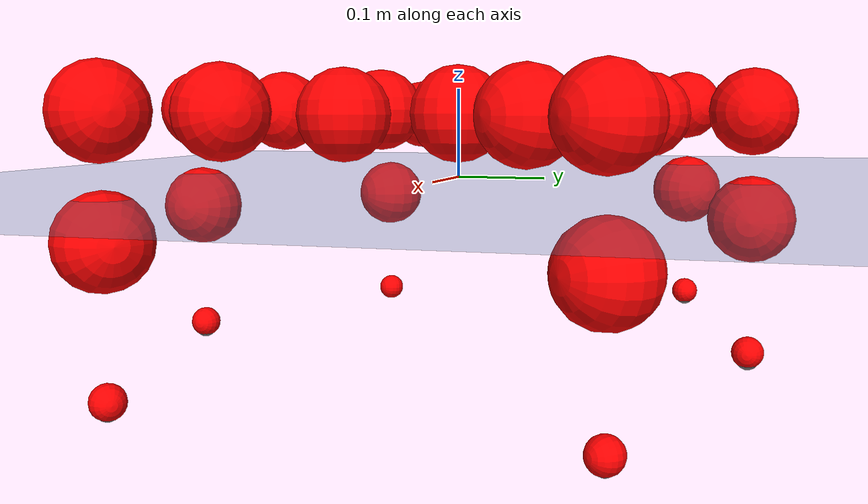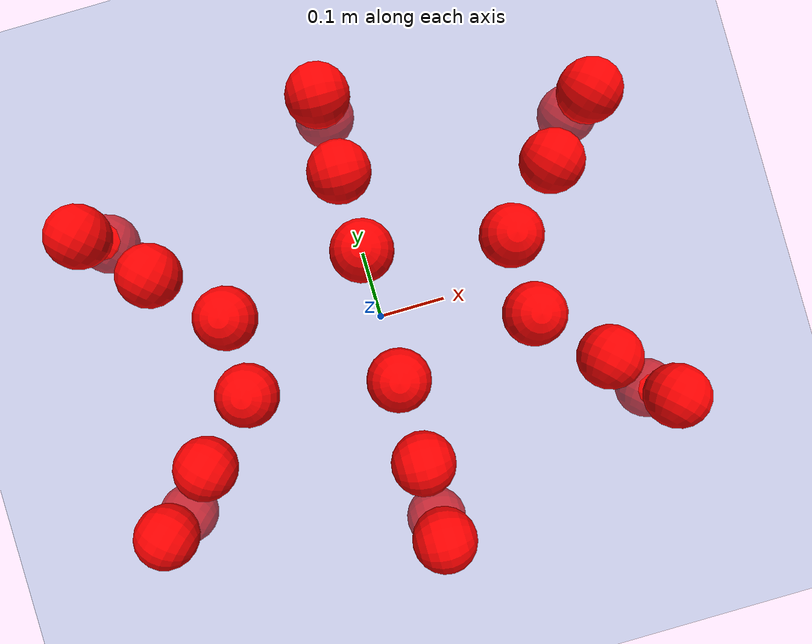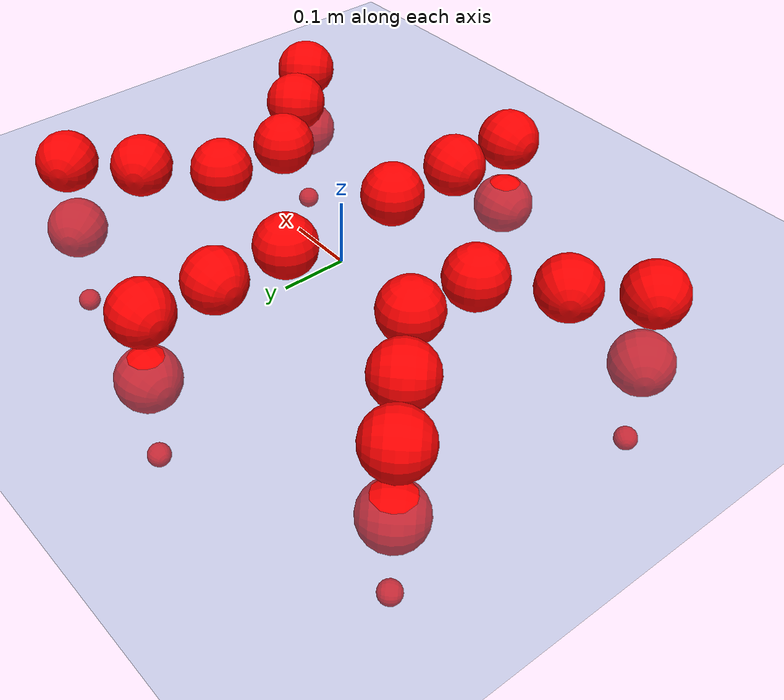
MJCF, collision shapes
<mujoco model="Golem">
  <compiler angle="radian" assetdir="assets" balanceinertia="true" inertiafromgeom="false"/>

  <option timestep="0.005" density="1.2" viscosity="2e-05"/>

  <size nkey="1"/>

  <visual>
    <quality shadowsize="8192"/>
    <map shadowclip="0.5"/>
  </visual>

  <default>
    <default class="/">
      <joint armature="0.01" damping="0.01" frictionloss="0.01"/>
      <geom contype="0" conaffinity="0" group="1" solref="-1000 -80"/>
      <site size="0.01 0.005 0.005" group="5"/>
      <general forcelimited="true" biastype="affine" gainprm="25" biasprm="0 -25 -0.5"/>
      <default class="visual">
        <geom type="mesh" group="2"/>
      </default>
      <default class="collision">
        <geom group="3"/>
      </default>
      <default class="foot">
        <geom size="0.01 0 0" condim="6" group="4" priority="1" solimp="0.015 1 0.01"/>
      </default>
      <default class="reward_collision_sphere">
        <geom group="5" rgba="1 0 0 1"/>
      </default>
    </default>
  </default>

  <asset>
    <texture type="skybox" colorspace="auto" name="//unnamed_texture_0" builtin="gradient" rgb1="0.95 0.95 0.95" rgb2="0.95 0.95 0.95" width="100" height="600"/>
    <texture type="2d" colorspace="auto" name="texplane" builtin="checker" rgb1="0.345 0.575 0.748" rgb2="0.345 0.575 0.748" markrgb="1 1 1" width="512" height="512"/>
    <material name="MatPlane" class="/" texture="texplane" texuniform="true" texrepeat="2 2" specular="0.9"/>
    <mesh name="body" class="/" file="body.stl" scale="0.001 0.001 0.001"/>
    <mesh name="coxa" class="/" file="coxa.stl" scale="0.001 0.001 0.001"/>
    <mesh name="femur" class="/" file="femur.stl" scale="0.001 0.001 0.001"/>
    <mesh name="tibia" class="/" file="tibia.stl" scale="0.001 0.001 0.001"/>
    <mesh name="tarsus" class="/" file="tarsus.stl" scale="0.001 0.001 0.001"/>
  </asset>

  <worldbody>
    <geom name="floor" class="/" size="100 100 0.125" type="plane" group="0" material="MatPlane"/>
    <light name="toplight_shadow" class="/" pos="0 0 5" dir="0.0990148 0.0990148 -0.990148" type="directional" ambient="0.04 0.04 0.04" diffuse="0.55 0.55 0.55" specular="0.12 0.12 0.12"/>
    <light name="toplight_fill" class="/" pos="0 0 5" dir="0.0990148 0.0990148 -0.990148" type="directional" castshadow="false" ambient="0.04 0.04 0.04" diffuse="0.3 0.3 0.3" specular="0.08 0.08 0.08"/>
    <body name="trunk" pos="-0.000773032 0.00232034 0.00253949" quat="1 8.8211e-05 2.70518e-05 -8.77097e-05">
      <inertial pos="0.00269836 0.00115675 -0.00338471" quat="0.999989 -0.00134429 -0.00433994 0.00127092" mass="6.03971" diaginertia="0.0443288 0.0125766 0.0163186"/>
      <joint name="//unnamed_joint_0" type="free"/>
      <geom name="//unnamed_geom_1" class="/" pos="0 0 0.0704312" quat="1 0 0 0" type="mesh" rgba="0.9 0.9 0.9 1" mesh="body"/>
      <site name="imu" class="/" pos="0.17543 0.00107256 0.1225" size="0.0116434"/>
      <camera name="track" class="/" pos="0 -2.07761 0" quat="0.707107 0.707107 0 0" mode="trackcom"/>
      <camera name="ego_camera" class="/" pos="0.175986 0 0.110049" quat="-0.5 -0.5 0.5 0.5"/>
      <body name="coxa_RR" pos="-0.240776 -0.0856805 0.0720645" quat="0.382685 0.000201 0.000176209 -0.923879">
        <inertial pos="0.000463998 0.00132159 -0.00266752" quat="0.999965 -0.00732202 0.00377579 -0.00127496" mass="0.32718" diaginertia="0.0453471 0.0120848 0.0161942"/>
        <joint name="coxa_joint_RR" class="/" pos="0 0 0" axis="0.00419811 -0.00974323 -0.999944" stiffness="0.00773817" range="-3.14642 3.13773" armature="0.0113063" damping="0" frictionloss="0.0117983"/>
        <geom name="//unnamed_geom_2" class="/" type="mesh" rgba="0.2 0.2 0.2 1" mesh="coxa"/>
        <geom name="//unnamed_geom_3" class="reward_collision_sphere" size="0.0465738" pos="-0.0406123 0 0"/>
        <body name="femur_RR" pos="0.0804805 -0.00201348 -0.00581324" quat="0.499788 -0.500199 0.500281 0.499732">
          <inertial pos="-0.00272877 -0.00279228 0.000898742" quat="0.999919 0.00496621 0.00876415 0.00777483" mass="0.312792" diaginertia="0.0449967 0.0123834 0.0156309"/>
          <joint name="femur_joint_RR" class="/" pos="0 0 0" axis="0.00682646 0.010722 -0.999919" stiffness="0.00361092" range="-3.14547 3.10352" armature="0.0103346" damping="0.00231736" frictionloss="0.0120504"/>
          <geom name="//unnamed_geom_4" class="/" type="mesh" rgba="0.9 0.9 0.9 1" mesh="femur"/>
          <geom name="//unnamed_geom_5" class="reward_collision_sphere" size="0.0465738"/>
          <body name="tibia_RR" pos="-0.000398185 -0.111698 -0.00132576" quat="-0.000164469 1 0.000578317 4.8714e-05">
            <inertial pos="-0.000302659 -0.001787 0.000997111" quat="0.999988 0.000574478 -0.00459852 0.0013826" mass="0.311099" diaginertia="0.0440728 0.0114047 0.0152576"/>
            <joint name="tibia_joint_RR" class="/" pos="0 0 0" axis="-0.00152488 -0.000351702 0.999999" stiffness="0.00197966" range="-3.08434 3.18304" armature="0.0109028" damping="0.00151054" frictionloss="0.0115792"/>
            <geom name="//unnamed_geom_6" class="/" type="mesh" rgba="0.2 0.2 0.2 1" mesh="tibia"/>
            <geom name="//unnamed_geom_7" class="reward_collision_sphere" size="0.0465738"/>
            <body name="tarsus_RR" pos="0.120293 0.000378631 0.000195496" quat="1 -0.000138716 6.10472e-05 8.75334e-05">
              <inertial pos="0.0819513 0.000438272 0.00281395" quat="0.507757 0.500786 0.49919 0.492144" mass="0.314317" diaginertia="0.0462482 0.0123653 0.0159668"/>
              <joint name="tarsus_joint_RR" class="/" pos="0 0 0" axis="0.000564985 0.000301368 1" stiffness="0.00517058" range="-3.1462 3.17999" armature="0.0102874" damping="0.0362097" frictionloss="0.0100752"/>
              <geom name="//unnamed_geom_8" class="/" type="mesh" rgba="0.9 0.9 0.9 1" mesh="tarsus"/>
              <geom name="foot_1" class="foot" size="0.0113522" pos="0.151619 0 0" quat="0 -0.707107 0 0.707107"/>
              <geom name="//unnamed_geom_10" class="reward_collision_sphere" size="0.0465738"/>
              <geom name="//unnamed_geom_11" class="reward_collision_sphere" size="0.0174652" pos="0.145527 0 0"/>
              <site name="foot_1" class="foot" pos="0.151619 0 0" quat="0 -0.707107 0 0.707107" size="0.0116434"/>
            </body>
          </body>
        </body>
      </body>
      <body name="coxa_RM" pos="0.000819475 -0.13648 0.0741637" quat="0.70783 -0.00045395 -0.000271437 -0.706382">
        <inertial pos="0.00159179 -0.000116353 -0.00264538" quat="0.999906 0.00608206 0.0113261 0.00468254" mass="0.302982" diaginertia="0.0437388 0.0121846 0.016426"/>
        <joint name="coxa_joint_RM" class="/" pos="0 0 0" axis="-0.00215671 -0.00849911 -0.999962" range="-3.19456 3.16697" armature="0.0120413" damping="0.00814288" frictionloss="0.0129096"/>
        <geom name="//unnamed_geom_12" class="/" type="mesh" rgba="0.2 0.2 0.2 1" mesh="coxa"/>
        <geom name="//unnamed_geom_13" class="reward_collision_sphere" size="0.0465738" pos="-0.0406123 0 0"/>
        <body name="femur_RM" pos="0.0821833 0.000565248 -0.00168173" quat="0.499882 -0.49996 0.500147 0.500011">
          <inertial pos="0.00201261 -0.00290169 0.000152135" quat="0.999909 0.00715443 0.00117707 -0.0114062" mass="0.313625" diaginertia="0.0447816 0.0117618 0.0157581"/>
          <joint name="femur_joint_RM" class="/" pos="0 0 0" axis="0.00547509 0.0100583 -0.999934" stiffness="0.00381903" range="-3.14136 3.13099" armature="0.0100638" damping="0.0201551" frictionloss="0.0114988"/>
          <geom name="//unnamed_geom_14" class="/" type="mesh" rgba="0.9 0.9 0.9 1" mesh="femur"/>
          <geom name="//unnamed_geom_15" class="reward_collision_sphere" size="0.0465738"/>
          <body name="tibia_RM" pos="-0.00138491 -0.112144 -0.00121758" quat="-0.000328627 1 -0.000231057 0.000146384">
            <inertial pos="0.00187657 0.00112529 -0.00105215" quat="1 -0.000280621 -0.000177379 -0.000242675" mass="0.303812" diaginertia="0.0444053 0.0114737 0.0153633"/>
            <joint name="tibia_joint_RM" class="/" pos="0 0 0" axis="0.00418624 0.00109796 0.999991" range="-3.14095 3.09667" armature="0.0114121" damping="0.0164692" frictionloss="0.0128206"/>
            <geom name="//unnamed_geom_16" class="/" type="mesh" rgba="0.2 0.2 0.2 1" mesh="tibia"/>
            <geom name="//unnamed_geom_17" class="reward_collision_sphere" size="0.0465738"/>
            <body name="tarsus_RM" pos="0.117174 -0.000507438 0.0021836" quat="1 -8.02003e-05 3.50742e-06 -4.09625e-05">
              <inertial pos="0.08385 -0.00172028 0.00144928" quat="0.499198 0.496702 0.500112 0.503961" mass="0.311057" diaginertia="0.0452082 0.0117186 0.0158736"/>
              <joint name="tarsus_joint_RM" class="/" pos="0 0 0" axis="-0.000954954 0.00217322 0.999997" range="-3.09724 3.09046" armature="0.0132155" damping="0.00261635" frictionloss="0.012019"/>
              <geom name="//unnamed_geom_18" class="/" type="mesh" rgba="0.9 0.9 0.9 1" mesh="tarsus"/>
              <geom name="foot_2" class="foot" size="0.0126752" pos="0.151619 0 0" quat="0 -0.707107 0 0.707107"/>
              <geom name="//unnamed_geom_20" class="reward_collision_sphere" size="0.0465738"/>
              <geom name="//unnamed_geom_21" class="reward_collision_sphere" size="0.0174652" pos="0.145527 0 0"/>
              <site name="foot_2" class="foot" pos="0.151619 0 0" quat="0 -0.707107 0 0.707107" size="0.0116434"/>
            </body>
          </body>
        </body>
      </body>
      <body name="coxa_RF" pos="0.240795 -0.087409 0.0703018" quat="0.923934 9.74429e-05 8.56894e-05 -0.382553">
        <inertial pos="-0.00232897 0.00252968 -0.00084364" quat="0.999999 -0.00143111 -0.000131634 -0.000382918" mass="0.320934" diaginertia="0.0456577 0.0126754 0.0157876"/>
        <joint name="coxa_joint_RF" class="/" pos="0 0 0" axis="0.00211964 -0.00497384 -0.999985" range="-3.15858 3.18219" armature="0.011984" damping="0.0259829" frictionloss="0.0113908"/>
        <geom name="//unnamed_geom_22" class="/" type="mesh" rgba="0.2 0.2 0.2 1" mesh="coxa"/>
        <geom name="//unnamed_geom_23" class="reward_collision_sphere" size="0.0465738" pos="-0.0406123 0 0"/>
        <body name="femur_RF" pos="0.0817046 -0.00192097 0.00323991" quat="0.501244 -0.499866 0.499384 0.499504">
          <inertial pos="0.0028142 -0.0021003 -0.000896387" quat="0.999905 0.00893525 -0.00945954 -0.00465268" mass="0.306245" diaginertia="0.0454129 0.0113619 0.0155405"/>
          <joint name="femur_joint_RF" class="/" pos="0 0 0" axis="0.000263388 -0.00022251 -1" range="-3.11916 3.18999" armature="0.0113359" damping="0.0157" frictionloss="0.0123297"/>
          <geom name="//unnamed_geom_24" class="/" type="mesh" rgba="0.9 0.9 0.9 1" mesh="femur"/>
          <geom name="//unnamed_geom_25" class="reward_collision_sphere" size="0.0465738"/>
          <body name="tibia_RF" pos="-0.000791638 -0.109513 -0.00208343" quat="-0.000102243 1 0.000233071 0.000347169">
            <inertial pos="0.00154644 0.000698321 -0.00190291" quat="0.999999 0.000773807 -0.000360792 0.000931006" mass="0.321865" diaginertia="0.0451731 0.0127111 0.0164045"/>
            <joint name="tibia_joint_RF" class="/" pos="0 0 0" axis="0.00561969 0.0015163 0.999983" stiffness="0.00444497" range="-3.18481 3.16125" armature="0.0101924" damping="0.00821011" frictionloss="0.0117914"/>
            <geom name="//unnamed_geom_26" class="/" type="mesh" rgba="0.2 0.2 0.2 1" mesh="tibia"/>
            <geom name="//unnamed_geom_27" class="reward_collision_sphere" size="0.0465738"/>
            <body name="tarsus_RF" pos="0.116309 -0.000830255 0.00101267" quat="1 -0.000190662 -0.000164323 -9.96917e-05">
              <inertial pos="0.0821067 0.00182269 -0.000671006" quat="0.499747 0.496787 0.502713 0.500734" mass="0.317507" diaginertia="0.0465757 0.0119075 0.0167177"/>
              <joint name="tarsus_joint_RF" class="/" pos="0 0 0" axis="0.00860307 0.00781114 0.999932" range="-3.19554 3.09556" armature="0.0128952" damping="0.00845473" frictionloss="0.0101132"/>
              <geom name="//unnamed_geom_28" class="/" type="mesh" rgba="0.9 0.9 0.9 1" mesh="tarsus"/>
              <geom name="foot_3" class="foot" size="0.0121315" pos="0.151619 0 0" quat="0 -0.707107 0 0.707107"/>
              <geom name="//unnamed_geom_30" class="reward_collision_sphere" size="0.0465738"/>
              <geom name="//unnamed_geom_31" class="reward_collision_sphere" size="0.0174652" pos="0.145527 0 0"/>
              <site name="foot_3" class="foot" pos="0.151619 0 0" quat="0 -0.707107 0 0.707107" size="0.0116434"/>
            </body>
          </body>
        </body>
      </body>
      <body name="coxa_LR" pos="-0.239741 0.0852109 0.074976" quat="0.382672 -9.99714e-06 1.1401e-05 0.923884">
        <inertial pos="0.000448271 0.00241379 0.00202376" quat="0.999984 -0.00270465 0.000945923 -0.00494825" mass="0.314459" diaginertia="0.0458005 0.0120198 0.0169928"/>
        <joint name="coxa_joint_LR" class="/" pos="0 0 0" axis="0.00185607 0.000155462 -0.999998" stiffness="0.00798196" range="-3.1868 3.08786" armature="0.01028" damping="0" frictionloss="0.0110739"/>
        <geom name="//unnamed_geom_32" class="/" type="mesh" rgba="0.2 0.2 0.2 1" mesh="coxa"/>
        <geom name="//unnamed_geom_33" class="reward_collision_sphere" size="0.0465738" pos="-0.0406123 0 0"/>
        <body name="femur_LR" pos="0.0821052 -0.000461444 0.00314266" quat="0.499987 -0.500011 0.500006 0.499996">
          <inertial pos="-0.00260313 -0.000145605 -8.25019e-05" quat="0.999923 -0.00983168 0.00613589 0.00443671" mass="0.315542" diaginertia="0.0445643 0.012085 0.0159991"/>
          <joint name="femur_joint_LR" class="/" pos="0 0 0" axis="-0.00866841 0.00697195 0.999938" stiffness="0.00509572" range="-3.08933 3.1479" armature="0.0126369" damping="0" frictionloss="0.0125283"/>
          <geom name="//unnamed_geom_34" class="/" type="mesh" rgba="0.9 0.9 0.9 1" mesh="femur"/>
          <geom name="//unnamed_geom_35" class="reward_collision_sphere" size="0.0465738"/>
          <body name="tibia_LR" pos="-0.0013086 -0.113507 2.36715e-05" quat="3.07968e-05 1 -6.54198e-05 -5.54724e-06">
            <inertial pos="-0.000584852 -0.000530624 -0.000279931" quat="0.999982 -0.00560218 -0.00189529 0.00109619" mass="0.336878" diaginertia="0.0465703 0.0121149 0.0165774"/>
            <joint name="tibia_joint_LR" class="/" pos="0 0 0" axis="0.00995217 -0.00568517 -0.999934" stiffness="0.0025743" range="-3.1915 3.11836" armature="0.0117547" damping="0" frictionloss="0.0114677"/>
            <geom name="//unnamed_geom_36" class="/" type="mesh" rgba="0.2 0.2 0.2 1" mesh="tibia"/>
            <geom name="//unnamed_geom_37" class="reward_collision_sphere" size="0.0465738"/>
            <body name="tarsus_LR" pos="0.118925 0.00144797 0.00126859" quat="1 -0.00023284 -5.8953e-05 0.000134974">
              <inertial pos="0.0799245 0.000224025 0.00136306" quat="0.501198 0.499455 0.4999 0.499445" mass="0.317481" diaginertia="0.0468224 0.01225 0.0167295"/>
              <joint name="tarsus_joint_LR" class="/" pos="0 0 0" axis="0.000520525 0.000330061 -1" range="-3.15208 3.12683" armature="0.0116866" damping="0" frictionloss="0.0132167"/>
              <geom name="//unnamed_geom_38" class="/" type="mesh" rgba="0.9 0.9 0.9 1" mesh="tarsus"/>
              <geom name="foot_4" class="foot" size="0.0127203" pos="0.151619 0 0" quat="0.707107 0 -0.707107 0"/>
              <geom name="//unnamed_geom_40" class="reward_collision_sphere" size="0.0465738"/>
              <geom name="//unnamed_geom_41" class="reward_collision_sphere" size="0.0174652" pos="0.145527 0 0"/>
              <site name="foot_4" class="foot" pos="0.151619 0 0" quat="0.707107 0 -0.707107 0" size="0.0116434"/>
            </body>
          </body>
        </body>
      </body>
      <body name="coxa_LM" pos="0.0008207 0.136112 0.0708841" quat="0.708105 -0.000107022 0.000729565 0.706107">
        <inertial pos="0.00274474 -0.00276591 -0.000829747" quat="0.999947 -0.00703176 0.000934128 -0.00742655" mass="0.304883" diaginertia="0.0425407 0.0117781 0.0155101"/>
        <joint name="coxa_joint_LM" class="/" pos="0 0 0" axis="0.00553955 -0.000515328 -0.999985" range="-3.12577 3.12854" armature="0.0132115" damping="0.0214786" frictionloss="0.0122411"/>
        <geom name="//unnamed_geom_42" class="/" type="mesh" rgba="0.2 0.2 0.2 1" mesh="coxa"/>
        <geom name="//unnamed_geom_43" class="reward_collision_sphere" size="0.0465738" pos="-0.0406123 0 0"/>
        <body name="femur_LM" pos="0.0758994 0.000608645 -0.00126544" quat="0.500601 -0.49962 0.49986 0.499919">
          <inertial pos="0.00274445 -0.000704293 -0.00167271" quat="0.999994 -0.000899018 -0.000126765 0.00344591" mass="0.324853" diaginertia="0.0483148 0.0127791 0.0171856"/>
          <joint name="femur_joint_LM" class="/" pos="0 0 0" axis="0.00957357 -0.00568213 0.999938" stiffness="0.0084082" range="-3.13074 3.1203" armature="0.012926" damping="0.00555015" frictionloss="0.0116587"/>
          <geom name="//unnamed_geom_44" class="/" type="mesh" rgba="0.9 0.9 0.9 1" mesh="femur"/>
          <geom name="//unnamed_geom_45" class="reward_collision_sphere" size="0.0465738"/>
          <body name="tibia_LM" pos="-0.00323277 -0.111889 -0.000100903" quat="0.000813315 1 -7.64941e-05 -0.000131485">
            <inertial pos="0.00156465 0.0011217 0.00252527" quat="0.999951 -0.0045211 0.00627087 -0.00616773" mass="0.305595" diaginertia="0.0470791 0.012127 0.0167124"/>
            <joint name="tibia_joint_LM" class="/" pos="0 0 0" axis="-0.00867931 0.00253097 -0.999959" range="-3.15062 3.18838" armature="0.0116057" damping="0.0203452" frictionloss="0.0101575"/>
            <geom name="//unnamed_geom_46" class="/" type="mesh" rgba="0.2 0.2 0.2 1" mesh="tibia"/>
            <geom name="//unnamed_geom_47" class="reward_collision_sphere" size="0.0465738"/>
            <body name="tarsus_LM" pos="0.11509 0.000396764 0.00196339" quat="0.999999 0.000319615 0.000511766 -0.000876526">
              <inertial pos="0.0793061 0.00112444 -0.00248699" quat="0.499912 0.499947 0.500096 0.500045" mass="0.32949" diaginertia="0.0447729 0.0120486 0.0167623"/>
              <joint name="tarsus_joint_LM" class="/" pos="0 0 0" axis="-0.000928148 0.00220135 -0.999997" stiffness="0.0100148" range="-3.17183 3.17978" armature="0.0116983" damping="0.0193855" frictionloss="0.0132543"/>
              <geom name="//unnamed_geom_48" class="/" type="mesh" rgba="0.9 0.9 0.9 1" mesh="tarsus"/>
              <geom name="foot_5" class="foot" size="0.0129884" pos="0.151619 0 0" quat="0.707107 0 -0.707107 0"/>
              <geom name="//unnamed_geom_50" class="reward_collision_sphere" size="0.0465738"/>
              <geom name="//unnamed_geom_51" class="reward_collision_sphere" size="0.0174652" pos="0.145527 0 0"/>
              <site name="foot_5" class="foot" pos="0.151619 0 0" quat="0.707107 0 -0.707107 0" size="0.0116434"/>
            </body>
          </body>
        </body>
      </body>
      <body name="coxa_LF" pos="0.239486 0.08591 0.0715898" quat="0.92386 1.43231e-05 3.44064e-05 0.38273">
        <inertial pos="0.000525972 -8.68698e-05 -0.002686" quat="0.999961 0.0063864 0.00565653 -0.00248979" mass="0.310083" diaginertia="0.0457122 0.0121518 0.0161661"/>
        <joint name="coxa_joint_LF" class="/" pos="0 0 0" axis="-0.00337335 -4.02622e-05 -0.999994" stiffness="0.0278359" range="-3.19571 3.1071" armature="0.0116748" damping="0.0217496" frictionloss="0.0105353"/>
        <geom name="//unnamed_geom_52" class="/" type="mesh" rgba="0.2 0.2 0.2 1" mesh="coxa"/>
        <geom name="//unnamed_geom_53" class="reward_collision_sphere" size="0.0465738" pos="-0.0406123 0 0"/>
        <body name="femur_LF" pos="0.0798688 0.000592748 -0.000897995" quat="0.499997 -0.500125 0.499771 0.500107">
          <inertial pos="-0.00137182 0.000509001 -0.000434917" quat="0.999933 0.00797999 0.00813314 -0.00200928" mass="0.300419" diaginertia="0.0443174 0.0118507 0.0152404"/>
          <joint name="femur_joint_LF" class="/" pos="0 0 0" axis="-0.00113 -0.00336181 0.999994" stiffness="0.00135263" range="-3.09652 3.17221" armature="0.0118013" damping="0.00610839" frictionloss="0.0103602"/>
          <geom name="//unnamed_geom_54" class="/" type="mesh" rgba="0.9 0.9 0.9 1" mesh="femur"/>
          <geom name="//unnamed_geom_55" class="reward_collision_sphere" size="0.0465738"/>
          <body name="tibia_LF" pos="-0.000468967 -0.113244 0.0019166" quat="-1.00519e-06 1 9.55938e-06 -5.73128e-06">
            <inertial pos="0.000241933 0.00147278 0.00276112" quat="0.999927 0.0105597 0.0044421 -0.00393624" mass="0.303647" diaginertia="0.0438712 0.0120122 0.0161619"/>
            <joint name="tibia_joint_LF" class="/" pos="0 0 0" axis="0.00361653 -0.000245519 -0.999993" range="-3.13751 3.13502" armature="0.0102641" damping="0" frictionloss="0.0131734"/>
            <geom name="//unnamed_geom_56" class="/" type="mesh" rgba="0.2 0.2 0.2 1" mesh="tibia"/>
            <geom name="//unnamed_geom_57" class="reward_collision_sphere" size="0.0465738"/>
            <body name="tarsus_LF" pos="0.122493 0.000685402 -8.63327e-05" quat="1 -0.000125606 0.000189009 0.00026142">
              <inertial pos="0.0829625 -0.000333544 -0.00267641" quat="0.499382 0.505404 0.494391 0.500761" mass="0.335542" diaginertia="0.0466612 0.0126175 0.0171784"/>
              <joint name="tarsus_joint_LF" class="/" pos="0 0 0" axis="0.0070528 -0.0116226 -0.999908" stiffness="0.027379" range="-3.16392 3.19153" armature="0.0115165" damping="0.0221456" frictionloss="0.0118304"/>
              <geom name="//unnamed_geom_58" class="/" type="mesh" rgba="0.9 0.9 0.9 1" mesh="tarsus"/>
              <geom name="foot_6" class="foot" size="0.0119855" pos="0.151619 0 0" quat="0.707107 0 -0.707107 0"/>
              <geom name="//unnamed_geom_60" class="reward_collision_sphere" size="0.0465738"/>
              <geom name="//unnamed_geom_61" class="reward_collision_sphere" size="0.0174652" pos="0.145527 0 0"/>
              <site name="foot_6" class="foot" pos="0.151619 0 0" quat="0.707107 0 -0.707107 0" size="0.0116434"/>
            </body>
          </body>
        </body>
      </body>
    </body>
  </worldbody>

  <contact>
    <pair class="/" geom1="floor" geom2="foot_1" name="//unnamed_contact_0"/>
    <pair class="/" geom1="floor" geom2="foot_2" name="//unnamed_contact_1"/>
    <pair class="/" geom1="floor" geom2="foot_3" name="//unnamed_contact_2"/>
    <pair class="/" geom1="floor" geom2="foot_4" name="//unnamed_contact_3"/>
    <pair class="/" geom1="floor" geom2="foot_5" name="//unnamed_contact_4"/>
    <pair class="/" geom1="floor" geom2="foot_6" name="//unnamed_contact_5"/>
  </contact>

  <actuator>
    <general name="coxa_joint_RR" class="/" joint="coxa_joint_RR" forcerange="-8.57769 8.57769" gainprm="27.795" biasprm="0 -27.795 -0.580255"/>
    <general name="femur_joint_RR" class="/" joint="femur_joint_RR" forcerange="-8.36527 8.36527" gainprm="27.795" biasprm="0 -27.795 -0.580255"/>
    <general name="tibia_joint_RR" class="/" joint="tibia_joint_RR" forcerange="-8.38486 8.38486" gainprm="27.795" biasprm="0 -27.795 -0.580255"/>
    <general name="tarsus_joint_RR" class="/" joint="tarsus_joint_RR" forcerange="-8.91784 8.91784" gainprm="27.795" biasprm="0 -27.795 -0.580255"/>
    <general name="coxa_joint_RM" class="/" joint="coxa_joint_RM" forcerange="-8.86138 8.86138" gainprm="27.795" biasprm="0 -27.795 -0.580255"/>
    <general name="femur_joint_RM" class="/" joint="femur_joint_RM" forcerange="-7.95543 7.95543" gainprm="27.795" biasprm="0 -27.795 -0.580255"/>
    <general name="tibia_joint_RM" class="/" joint="tibia_joint_RM" forcerange="-7.79942 7.79942" gainprm="27.795" biasprm="0 -27.795 -0.580255"/>
    <general name="tarsus_joint_RM" class="/" joint="tarsus_joint_RM" forcerange="-8.52085 8.52085" gainprm="27.795" biasprm="0 -27.795 -0.580255"/>
    <general name="coxa_joint_RF" class="/" joint="coxa_joint_RF" forcerange="-8.65876 8.65876" gainprm="27.795" biasprm="0 -27.795 -0.580255"/>
    <general name="femur_joint_RF" class="/" joint="femur_joint_RF" forcerange="-7.70631 7.70631" gainprm="27.795" biasprm="0 -27.795 -0.580255"/>
    <general name="tibia_joint_RF" class="/" joint="tibia_joint_RF" forcerange="-8.99856 8.99856" gainprm="27.795" biasprm="0 -27.795 -0.580255"/>
    <general name="tarsus_joint_RF" class="/" joint="tarsus_joint_RF" forcerange="-9.32746 9.32746" gainprm="27.795" biasprm="0 -27.795 -0.580255"/>
    <general name="coxa_joint_LR" class="/" joint="coxa_joint_LR" forcerange="-8.44617 8.44617" gainprm="27.795" biasprm="0 -27.795 -0.580255"/>
    <general name="femur_joint_LR" class="/" joint="femur_joint_LR" forcerange="-8.24503 8.24503" gainprm="27.795" biasprm="0 -27.795 -0.580255"/>
    <general name="tibia_joint_LR" class="/" joint="tibia_joint_LR" forcerange="-8.7605 8.7605" gainprm="27.795" biasprm="0 -27.795 -0.580255"/>
    <general name="tarsus_joint_LR" class="/" joint="tarsus_joint_LR" forcerange="-9.36114 9.36114" gainprm="27.795" biasprm="0 -27.795 -0.580255"/>
    <general name="coxa_joint_LM" class="/" joint="coxa_joint_LM" forcerange="-8.74356 8.74356" gainprm="27.795" biasprm="0 -27.795 -0.580255"/>
    <general name="femur_joint_LM" class="/" joint="femur_joint_LM" forcerange="-8.43236 8.43236" gainprm="27.795" biasprm="0 -27.795 -0.580255"/>
    <general name="tibia_joint_LM" class="/" joint="tibia_joint_LM" forcerange="-8.52141 8.52141" gainprm="27.795" biasprm="0 -27.795 -0.580255"/>
    <general name="tarsus_joint_LM" class="/" joint="tarsus_joint_LM" forcerange="-8.25486 8.25486" gainprm="27.795" biasprm="0 -27.795 -0.580255"/>
    <general name="coxa_joint_LF" class="/" joint="coxa_joint_LF" forcerange="-9.08025 9.08025" gainprm="27.795" biasprm="0 -27.795 -0.580255"/>
    <general name="femur_joint_LF" class="/" joint="femur_joint_LF" forcerange="-8.19627 8.19627" gainprm="27.795" biasprm="0 -27.795 -0.580255"/>
    <general name="tibia_joint_LF" class="/" joint="tibia_joint_LF" forcerange="-9.12035 9.12035" gainprm="27.795" biasprm="0 -27.795 -0.580255"/>
    <general name="tarsus_joint_LF" class="/" joint="tarsus_joint_LF" forcerange="-7.71084 7.71084" gainprm="27.795" biasprm="0 -27.795 -0.580255"/>
  </actuator>

  <sensor>
    <gyro site="imu" name="imu_angular_velocity"/>
    <velocimeter site="imu" name="imu_linear_velocity"/>
    <framelinvel objtype="site" objname="foot_1" name="foot_1_global_linear_velocity"/>
    <framelinvel objtype="site" objname="foot_2" name="foot_2_global_linear_velocity"/>
    <framelinvel objtype="site" objname="foot_3" name="foot_3_global_linear_velocity"/>
    <framelinvel objtype="site" objname="foot_4" name="foot_4_global_linear_velocity"/>
    <framelinvel objtype="site" objname="foot_5" name="foot_5_global_linear_velocity"/>
    <framelinvel objtype="site" objname="foot_6" name="foot_6_global_linear_velocity"/>
  </sensor>

  <keyframe>
    <key name="home" qpos="0 0 0.1457 1 0 0 0 0 0 0 0 0 0 0 0 0 0 0 0 0 0 0 0 0 0 0 0 0 0 0 0"/>
  </keyframe>
</mujoco>
